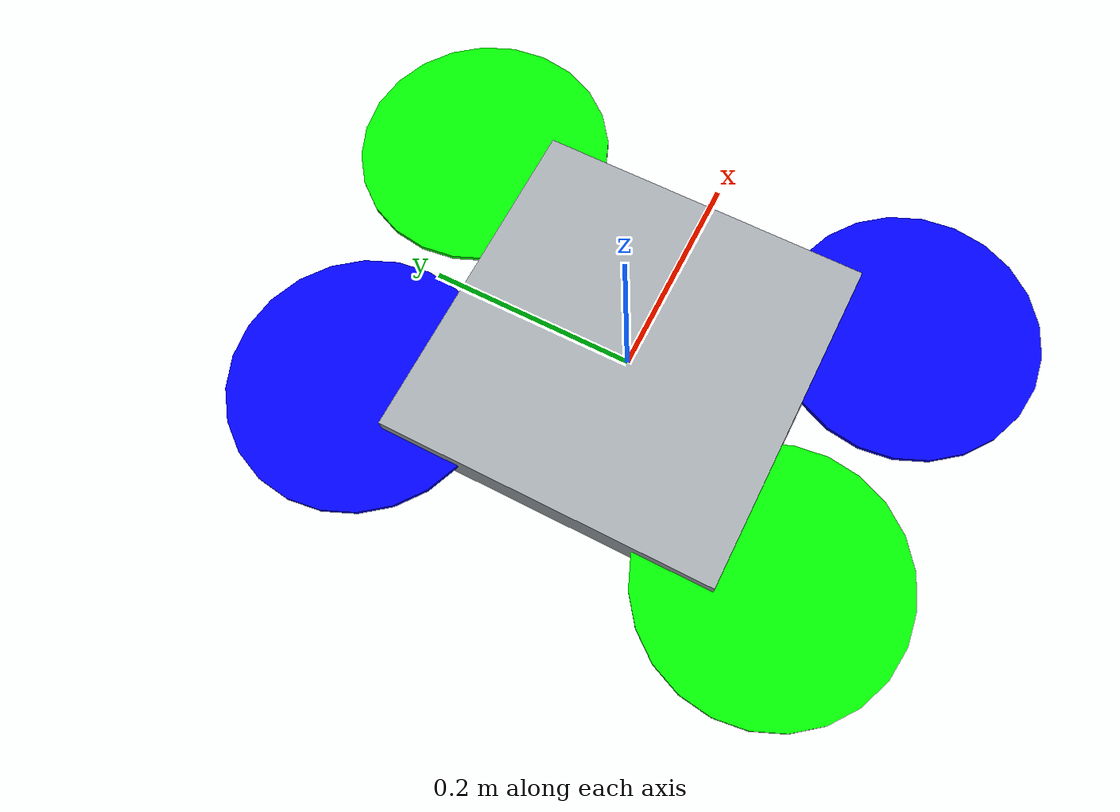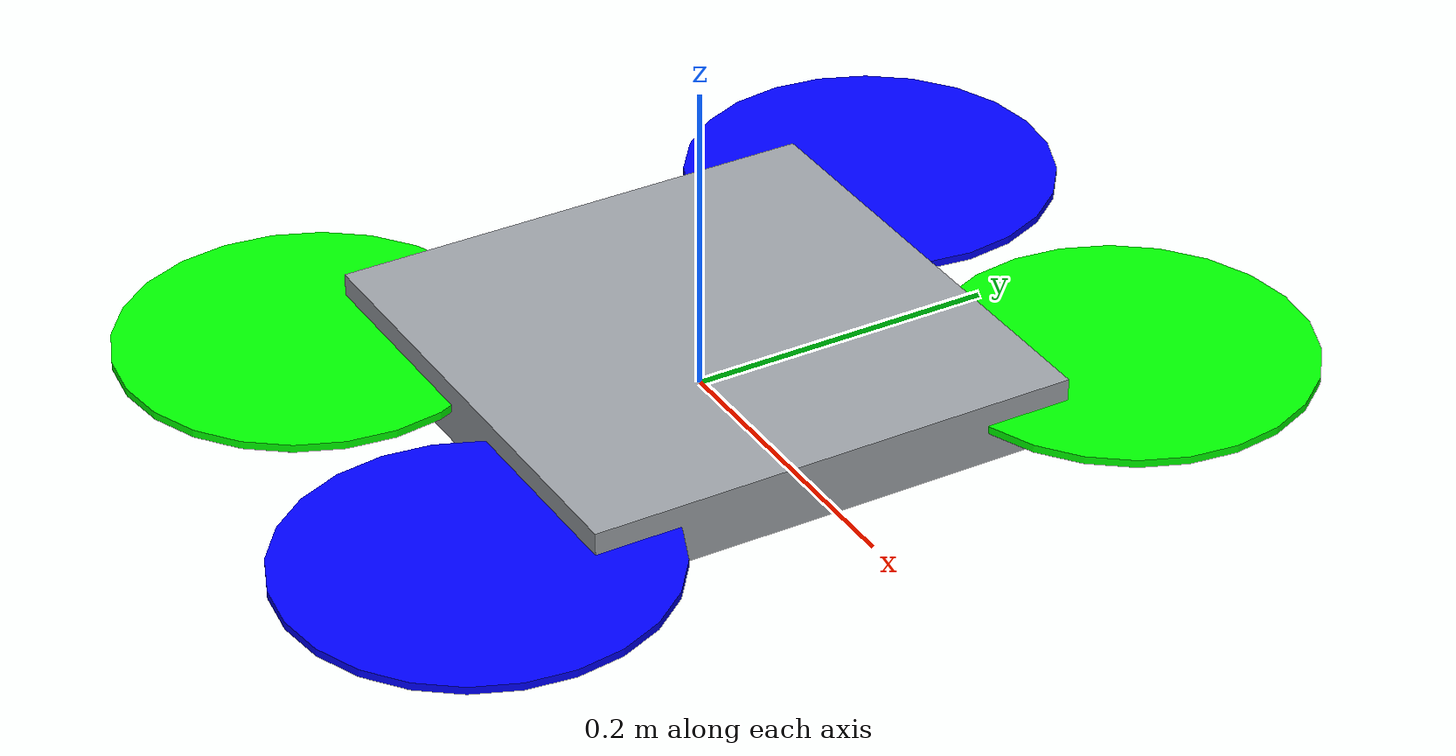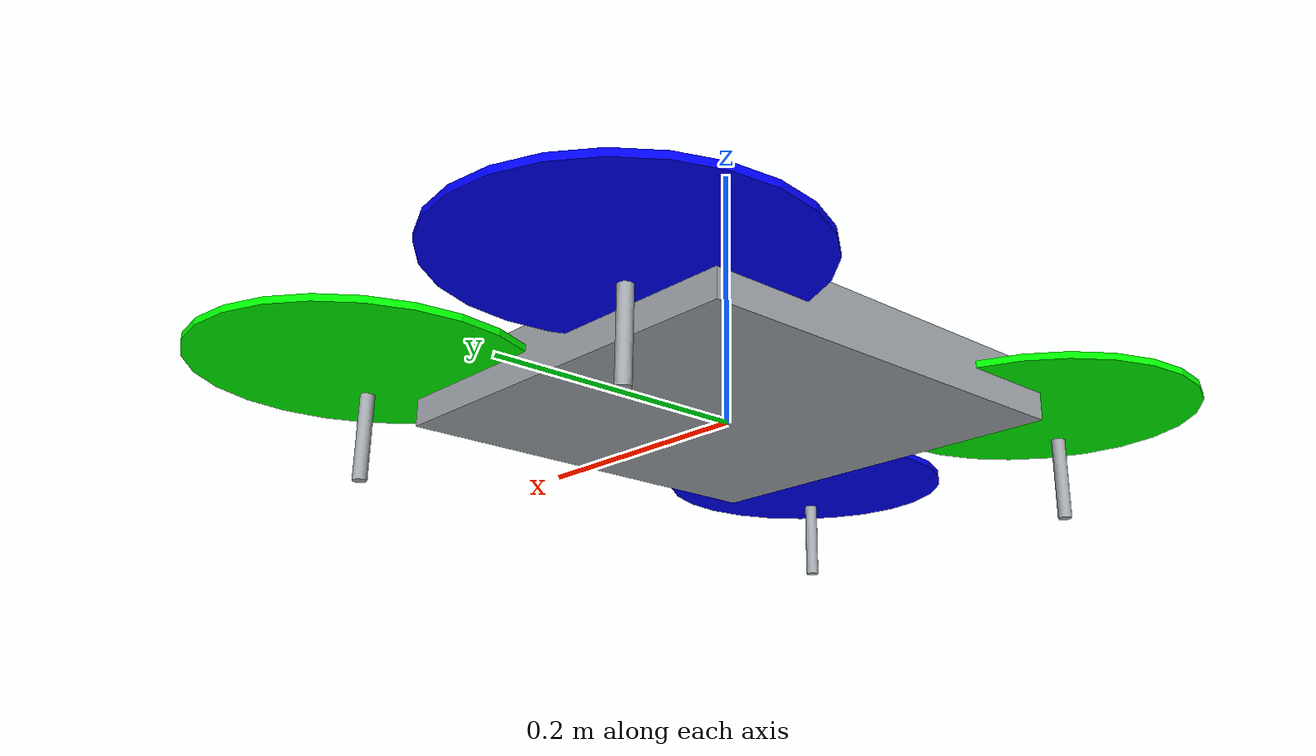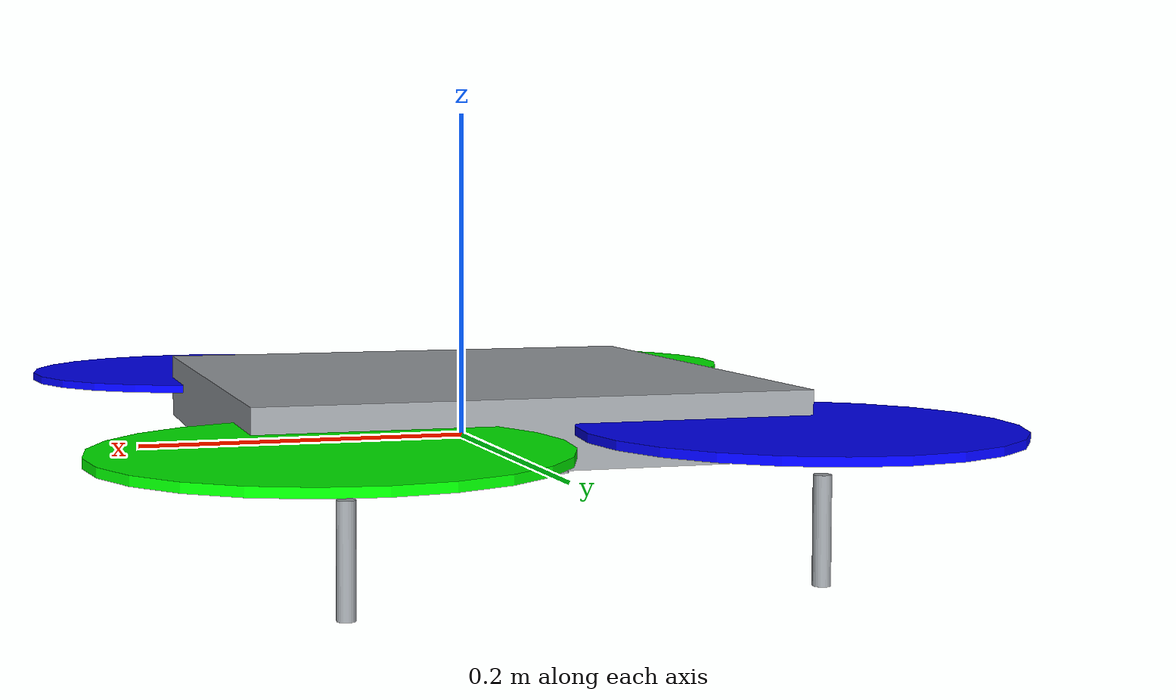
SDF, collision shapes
<?xml version='1.0'?>
<sdf version="1.9">
  <model name="ensamb_with_gimbal">
    <include>
      <uri>model://ensamb_with_standoffs</uri>
    </include>

    <!-- plugins -->
    <plugin filename="gz-sim-joint-state-publisher-system"
      name="gz::sim::systems::JointStatePublisher">
    </plugin>
    <plugin filename="gz-sim-lift-drag-system"
        name="gz::sim::systems::LiftDrag">
      <a0>0.3</a0>
      <alpha_stall>1.4</alpha_stall>
      <cla>4.2500</cla>
      <cda>0.10</cda>
      <cma>0.0</cma>
      <cla_stall>-0.025</cla_stall>
      <cda_stall>0.0</cda_stall>
      <cma_stall>0.0</cma_stall>
      <area>0.0018</area>
      <air_density>1.2041</air_density>
      <cp>0.084 0 0</cp>
      <forward>0 1 0</forward>
      <upward>0 0 1</upward>
      <link_name>ensamb_with_standoffs::rotor_0</link_name>
    </plugin>
    <plugin filename="gz-sim-lift-drag-system"
        name="gz::sim::systems::LiftDrag">
      <a0>0.3</a0>
      <alpha_stall>1.4</alpha_stall>
      <cla>4.2500</cla>
      <cda>0.10</cda>
      <cma>0.0</cma>
      <cla_stall>-0.025</cla_stall>
      <cda_stall>0.0</cda_stall>
      <cma_stall>0.0</cma_stall>
      <area>0.0018</area>
      <air_density>1.2041</air_density>
      <cp>-0.084 0 0</cp>
      <forward>0 -1 0</forward>
      <upward>0 0 1</upward>
      <link_name>ensamb_with_standoffs::rotor_0</link_name>
    </plugin>

    <plugin filename="gz-sim-lift-drag-system"
        name="gz::sim::systems::LiftDrag">
      <a0>0.3</a0>
      <alpha_stall>1.4</alpha_stall>
      <cla>4.2500</cla>
      <cda>0.10</cda>
      <cma>0.0</cma>
      <cla_stall>-0.025</cla_stall>
      <cda_stall>0.0</cda_stall>
      <cma_stall>0.0</cma_stall>
      <area>0.0018</area>
      <air_density>1.2041</air_density>
      <cp>0.084 0 0</cp>
      <forward>0 1 0</forward>
      <upward>0 0 1</upward>
      <link_name>ensamb_with_standoffs::rotor_1</link_name>
    </plugin>
    <plugin filename="gz-sim-lift-drag-system"
        name="gz::sim::systems::LiftDrag">
      <a0>0.3</a0>
      <alpha_stall>1.4</alpha_stall>
      <cla>4.2500</cla>
      <cda>0.10</cda>
      <cma>0.0</cma>
      <cla_stall>-0.025</cla_stall>
      <cda_stall>0.0</cda_stall>
      <cma_stall>0.0</cma_stall>
      <area>0.0018</area>
      <air_density>1.2041</air_density>
      <cp>-0.084 0 0</cp>
      <forward>0 -1 0</forward>
      <upward>0 0 1</upward>
      <link_name>ensamb_with_standoffs::rotor_1</link_name>
    </plugin>

    <plugin filename="gz-sim-lift-drag-system"
        name="gz::sim::systems::LiftDrag">
      <a0>0.3</a0>
      <alpha_stall>1.4</alpha_stall>
      <cla>4.2500</cla>
      <cda>0.10</cda>
      <cma>0.0</cma>
      <cla_stall>-0.025</cla_stall>
      <cda_stall>0.0</cda_stall>
      <cma_stall>0.0</cma_stall>
      <area>0.0018</area>
      <air_density>1.2041</air_density>
      <cp>0.084 0 0</cp>
      <forward>0 -1 0</forward>
      <upward>0 0 1</upward>
      <link_name>ensamb_with_standoffs::rotor_2</link_name>
    </plugin>
    <plugin filename="gz-sim-lift-drag-system"
        name="gz::sim::systems::LiftDrag">
      <a0>0.3</a0>
      <alpha_stall>1.4</alpha_stall>
      <cla>4.2500</cla>
      <cda>0.10</cda>
      <cma>0.0</cma>
      <cla_stall>-0.025</cla_stall>
      <cda_stall>0.0</cda_stall>
      <cma_stall>0.0</cma_stall>
      <area>0.0018</area>
      <air_density>1.2041</air_density>
      <cp>-0.084 0 0</cp>
      <forward>0 1 0</forward>
      <upward>0 0 1</upward>
      <link_name>ensamb_with_standoffs::rotor_2</link_name>
    </plugin>

    <plugin filename="gz-sim-lift-drag-system"
        name="gz::sim::systems::LiftDrag">
      <a0>0.3</a0>
      <alpha_stall>1.4</alpha_stall>
      <cla>4.2500</cla>
      <cda>0.10</cda>
      <cma>0.0</cma>
      <cla_stall>-0.025</cla_stall>
      <cda_stall>0.0</cda_stall>
      <cma_stall>0.0</cma_stall>
      <area>0.0018</area>
      <air_density>1.2041</air_density>
      <cp>0.084 0 0</cp>
      <forward>0 -1 0</forward>
      <upward>0 0 1</upward>
      <link_name>ensamb_with_standoffs::rotor_3</link_name>
    </plugin>
    <plugin filename="gz-sim-lift-drag-system"
        name="gz::sim::systems::LiftDrag">
      <a0>0.3</a0>
      <alpha_stall>1.4</alpha_stall>
      <cla>4.2500</cla>
      <cda>0.10</cda>
      <cma>0.0</cma>
      <cla_stall>-0.025</cla_stall>
      <cda_stall>0.0</cda_stall>
      <cma_stall>0.0</cma_stall>
      <area>0.0018</area>
      <air_density>1.2041</air_density>
      <cp>-0.084 0 0</cp>
      <forward>0 1 0</forward>
      <upward>0 0 1</upward>
      <link_name>ensamb_with_standoffs::rotor_3</link_name>
    </plugin>

    <plugin filename="gz-sim-apply-joint-force-system"
      name="gz::sim::systems::ApplyJointForce">
      <joint_name>ensamb_with_standoffs::rotor_0_joint</joint_name>
    </plugin>
    <plugin filename="gz-sim-apply-joint-force-system"
      name="gz::sim::systems::ApplyJointForce">
      <joint_name>ensamb_with_standoffs::rotor_1_joint</joint_name>
    </plugin>
    <plugin filename="gz-sim-apply-joint-force-system"
      name="gz::sim::systems::ApplyJointForce">
      <joint_name>ensamb_with_standoffs::rotor_2_joint</joint_name>
    </plugin>
    <plugin filename="gz-sim-apply-joint-force-system"
      name="gz::sim::systems::ApplyJointForce">
      <joint_name>ensamb_with_standoffs::rotor_3_joint</joint_name>
    </plugin>

    <plugin name="ArduPilotPlugin"
      filename="ArduPilotPlugin">
      <!-- Port settings -->
      <fdm_addr>127.0.0.1</fdm_addr>
      <fdm_port_in>9002</fdm_port_in>
      <connectionTimeoutMaxCount>5</connectionTimeoutMaxCount>
      <lock_step>1</lock_step>
      <no_time_sync>1</no_time_sync>

      <!-- Frame conventions
        Require by ArduPilot: change model and gazebo from XYZ to XY-Z coordinates
      -->
      <modelXYZToAirplaneXForwardZDown degrees="true">0 0 0 180 0 0</modelXYZToAirplaneXForwardZDown>
      <gazeboXYZToNED degrees="true">0 0 0 180 0 90</gazeboXYZToNED>

      <!-- Sensors -->
      <imuName>ensamb_with_standoffs::imu_link::imu_sensor</imuName>

      <control channel="0">
        <jointName>ensamb_with_standoffs::rotor_0_joint</jointName>
        <useForce>1</useForce>
        <multiplier>1069</multiplier>
        <offset>0</offset>
        <servo_min>1100</servo_min>
        <servo_max>1900</servo_max>
        <type>VELOCITY</type>
        <p_gain>0.20</p_gain>
        <i_gain>0</i_gain>
        <d_gain>0</d_gain>
        <i_max>0</i_max>
        <i_min>0</i_min>
        <cmd_max>2.5</cmd_max>
        <cmd_min>-2.5</cmd_min>
        <controlVelocitySlowdownSim>1</controlVelocitySlowdownSim>
      </control>

      <control channel="1">
        <jointName>ensamb_with_standoffs::rotor_1_joint</jointName>
        <useForce>1</useForce>
        <multiplier>1069</multiplier>
        <offset>0</offset>
        <servo_min>1100</servo_min>
        <servo_max>1900</servo_max>
        <type>VELOCITY</type>
        <p_gain>0.20</p_gain>
        <i_gain>0</i_gain>
        <d_gain>0</d_gain>
        <i_max>0</i_max>
        <i_min>0</i_min>
        <cmd_max>2.5</cmd_max>
        <cmd_min>-2.5</cmd_min>
        <controlVelocitySlowdownSim>1</controlVelocitySlowdownSim>
      </control>

      <control channel="2">
        <jointName>ensamb_with_standoffs::rotor_2_joint</jointName>
        <useForce>1</useForce>
        <multiplier>-1069</multiplier>
        <offset>0</offset>
        <servo_min>1100</servo_min>
        <servo_max>1900</servo_max>
        <type>VELOCITY</type>
        <p_gain>0.20</p_gain>
        <i_gain>0</i_gain>
        <d_gain>0</d_gain>
        <i_max>0</i_max>
        <i_min>0</i_min>
        <cmd_max>2.5</cmd_max>
        <cmd_min>-2.5</cmd_min>
        <controlVelocitySlowdownSim>1</controlVelocitySlowdownSim>
      </control>

      <control channel="3">
        <jointName>ensamb_with_standoffs::rotor_3_joint</jointName>
        <useForce>1</useForce>
        <multiplier>-1069</multiplier>
        <offset>0</offset>
        <servo_min>1100</servo_min>
        <servo_max>1900</servo_max>
        <type>VELOCITY</type>
        <p_gain>0.20</p_gain>
        <i_gain>0</i_gain>
        <d_gain>0</d_gain>
        <i_max>0</i_max>
        <i_min>0</i_min>
        <cmd_max>2.5</cmd_max>
        <cmd_min>-2.5</cmd_min>
        <controlVelocitySlowdownSim>1</controlVelocitySlowdownSim>
      </control>

    </plugin>

  </model>
</sdf>

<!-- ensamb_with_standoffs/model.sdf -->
<sdf version='1.9'>
  <model name='ensamb_with_standoffs'>
    <pose>0 0 0 0 0 0</pose>
    <link name='base_link'>
      <velocity_decay>
        <linear>0.0</linear>
        <angular>0.0</angular>
      </velocity_decay>
      <inertial>
        <pose>0 0 0 0 0 0</pose>
        <mass>0.825</mass>
        <inertia>
          <ixx>0.008</ixx>
          <ixy>0</ixy>
          <ixz>0</ixz>
          <iyy>0.015</iyy>
          <iyz>0</iyz>
          <izz>0.017</izz>
        </inertia>
      </inertial>
      <collision name='base_collision'>
        <pose>0 0 0.02 0 0 0</pose>
        <geometry>
          <box>
            <size>0.32 0.32 0.04</size>
          </box>
        </geometry>
        <surface>
          <contact>
            <ode>
              <max_vel>100.0</max_vel>
              <min_depth>0.001</min_depth>
            </ode>
          </contact>
          <friction>
            <ode>
              <mu>100000.0</mu>
              <mu2>100000.0</mu2>
            </ode>
          </friction>
        </surface>
      </collision>
      <collision name='front_left_leg_collision'>
        <pose>0.123 0.22 -0.03 0 0 0</pose>
        <geometry>
          <cylinder>
            <radius>0.005</radius>
            <length>0.06</length>
          </cylinder>
        </geometry>
        <surface>
          <contact>
            <ode>
              <max_vel>100.0</max_vel>
              <min_depth>0.001</min_depth>
            </ode>
          </contact>
          <friction>
            <ode>
              <mu>100000.0</mu>
              <mu2>100000.0</mu2>
            </ode>
          </friction>
        </surface>
      </collision>
      <collision name='front_right_leg_collision'>
        <pose>0.123 -0.22 -0.03 0 0 0</pose>
        <geometry>
          <cylinder>
            <radius>0.005</radius>
            <length>0.06</length>
          </cylinder>
        </geometry>
        <surface>
          <contact>
            <ode>
              <max_vel>100.0</max_vel>
              <min_depth>0.001</min_depth>
            </ode>
          </contact>
          <friction>
            <ode>
              <mu>100000.0</mu>
              <mu2>100000.0</mu2>
            </ode>
          </friction>
        </surface>
      </collision>
      <collision name='rear_left_leg_collision'>
        <pose>-0.140 0.21 -0.03 0 0 0</pose>
        <geometry>
          <cylinder>
            <radius>0.005</radius>
            <length>0.06</length>
          </cylinder>
        </geometry>
        <surface>
          <contact>
            <ode>
              <max_vel>100.0</max_vel>
              <min_depth>0.001</min_depth>
            </ode>
          </contact>
          <friction>
            <ode>
              <mu>100000.0</mu>
              <mu2>100000.0</mu2>
            </ode>
          </friction>
        </surface>
      </collision>
      <collision name='rear_right_leg_collision'>
        <pose>-0.140 -0.21 -0.03 0 0 0</pose>
        <geometry>
          <cylinder>
            <radius>0.005</radius>
            <length>0.06</length>
          </cylinder>
        </geometry>
        <surface>
          <contact>
            <ode>
              <max_vel>100.0</max_vel>
              <min_depth>0.001</min_depth>
            </ode>
          </contact>
          <friction>
            <ode>
              <mu>100000.0</mu>
              <mu2>100000.0</mu2>
            </ode>
          </friction>
        </surface>
      </collision>

      <visual name='base_visual'>
        <pose>-0.192857 0.147636 -0.103423 0 0 0</pose>
        <geometry>
          <mesh>
            <uri>model://ensamb_with_standoffs/meshes/ensambFinal.STL</uri>
            <scale>0.001 0.001 0.001</scale>
          </mesh>
        </geometry>
        <material>
          <ambient>0.62 0.64 0.66 1</ambient>
          <diffuse>0.62 0.64 0.66 1</diffuse>
          <specular>0.15 0.15 0.15 1</specular>
        </material>
      </visual>
      <visual name='front_left_leg_visual'>
        <transparency>1</transparency>
        <pose>0.123 0.22 -0.03 0 0 0</pose>
        <geometry>
          <cylinder>
            <radius>0.005</radius>
            <length>0.06</length>
          </cylinder>
        </geometry>
        <material>
          <ambient>0.05 0.05 0.05</ambient>
          <diffuse>0.05 0.05 0.05</diffuse>
          <specular>0.01 0.01 0.01 1.0</specular>
          <pbr>
            <metal>
              <metalness>0.5</metalness>
              <roughness>0.5</roughness>
            </metal>
          </pbr>
        </material>
      </visual>
      <visual name='front_right_leg_visual'>
        <transparency>1</transparency>
        <pose>0.123 -0.22 -0.03 0 0 0</pose>
        <geometry>
          <cylinder>
            <radius>0.005</radius>
            <length>0.06</length>
          </cylinder>
        </geometry>
        <material>
          <ambient>0.05 0.05 0.05</ambient>
          <diffuse>0.05 0.05 0.05</diffuse>
          <specular>0.01 0.01 0.01 1.0</specular>
          <pbr>
            <metal>
              <metalness>0.5</metalness>
              <roughness>0.5</roughness>
            </metal>
          </pbr>
        </material>
      </visual>
      <visual name='rear_left_leg_visual'>
        <transparency>1</transparency>
        <pose>-0.140 0.21 -0.03 0 0 0</pose>
        <geometry>
          <cylinder>
            <radius>0.005</radius>
            <length>0.06</length>
          </cylinder>
        </geometry>
        <material>
          <ambient>0.05 0.05 0.05</ambient>
          <diffuse>0.05 0.05 0.05</diffuse>
          <specular>0.01 0.01 0.01 1.0</specular>
          <pbr>
            <metal>
              <metalness>0.5</metalness>
              <roughness>0.5</roughness>
            </metal>
          </pbr>
        </material>
      </visual>
      <visual name='rear_right_leg_visual'>
        <transparency>1</transparency>
        <pose>-0.140 -0.21 -0.03 0 0 0</pose>
        <geometry>
          <cylinder>
            <radius>0.005</radius>
            <length>0.06</length>
          </cylinder>
        </geometry>
        <material>
          <ambient>0.05 0.05 0.05</ambient>
          <diffuse>0.05 0.05 0.05</diffuse>
          <specular>0.01 0.01 0.01 1.0</specular>
          <pbr>
            <metal>
              <metalness>0.5</metalness>
              <roughness>0.5</roughness>
            </metal>
          </pbr>
        </material>
      </visual>
    </link>
    <link name='imu_link'>
      <inertial>
        <pose>0 0 0 0 0 0</pose>
        <mass>0.001</mass>
        <inertia>
          <ixx>0.00001</ixx>
          <ixy>0</ixy>
          <ixz>0</ixz>
          <iyy>0.00002</iyy>
          <iyz>0</iyz>
          <izz>0.00002</izz>
        </inertia>
      </inertial>
      <sensor name="imu_sensor" type="imu">
        <gz_frame_id>imu_link</gz_frame_id>
        <pose degrees="true">0 0 0 180 0 0</pose>
        <always_on>1</always_on>
        <update_rate>1000.0</update_rate>
      </sensor>
    </link>
    <joint name='imu_joint' type='revolute'>
      <child>imu_link</child>
      <parent>base_link</parent>
      <axis>
        <xyz>0 0 1</xyz>
        <limit>
          <lower>0</lower>
          <upper>0</upper>
          <effort>0</effort>
          <velocity>0</velocity>
        </limit>
        <dynamics>
          <damping>1.0</damping>
        </dynamics>
      </axis>
    </joint>
    <link name='down_camera_link'>
      <pose>0 0 -0.021 0 0 0</pose>
      <inertial>
        <mass>0.001</mass>
        <inertia>
          <ixx>1e-06</ixx>
          <ixy>0</ixy>
          <ixz>0</ixz>
          <iyy>1e-06</iyy>
          <iyz>0</iyz>
          <izz>1e-06</izz>
        </inertia>
      </inertial>
      <sensor name='down_camera' type='camera'>
        <gz_frame_id>down_camera_link</gz_frame_id>
        <pose>0 0 0 0 1.57079632679 0</pose>
        <camera>
          <horizontal_fov>2.7507</horizontal_fov>
          <image>
            <width>640</width>
            <height>480</height>
          </image>
          <clip>
            <near>0.02</near>
            <far>15000</far>
          </clip>
        </camera>
        <always_on>1</always_on>
        <update_rate>10</update_rate>
        <visualize>1</visualize>
        <plugin filename="CameraZoomPlugin"
            name="CameraZoomPlugin">
          <max_zoom>125.0</max_zoom>
          <slew_rate>0.42514285714</slew_rate>
        </plugin>
        <plugin name="GstCameraPlugin"
            filename="GstCameraPlugin">
          <udp_host>127.0.0.1</udp_host>
          <udp_port>5600</udp_port>
          <use_basic_pipeline>true</use_basic_pipeline>
          <use_cuda>false</use_cuda>
        </plugin>
      </sensor>
    </link>
    <joint name='down_camera_joint' type='fixed'>
      <child>down_camera_link</child>
      <parent>base_link</parent>
    </joint>
    <link name='rotor_0'>
      <pose>0.13 -0.22 0.023 0 0 0</pose>
      <inertial>
        <pose>0 0 0 0 0 0</pose>
        <mass>0.089</mass>
        <inertia>
          <ixx>9.75e-06</ixx>
          <ixy>0</ixy>
          <ixz>0</ixz>
          <iyy>0.000166704</iyy>
          <iyz>0</iyz>
          <izz>0.000167604</izz>
        </inertia>
      </inertial>
      <collision name='collision'>
        <pose>0 0 0 0 0 0</pose>
        <geometry>
          <cylinder>
            <length>0.005</length>
            <radius>0.12</radius>
          </cylinder>
        </geometry>
      </collision>
      <visual name='visual'>
        <pose>0 0 0 0 0 0</pose>
        <geometry>
          <mesh>
            <scale>1 1 1</scale>
            <uri>model://ensamb_with_standoffs/meshes/iris_prop_ccw.dae</uri>
          </mesh>
        </geometry>
        <material>
          <ambient>0 0 1</ambient>
          <diffuse>0 0 1</diffuse>
          <specular>1 1 1 1</specular>
          <pbr>
            <metal>
              <metalness>0.5</metalness>
              <roughness>0.5</roughness>
            </metal>
          </pbr>
        </material>
      </visual>
    </link>
    <joint name='rotor_0_joint' type='revolute'>
      <child>rotor_0</child>
      <parent>base_link</parent>
      <axis>
        <xyz>0 0 1</xyz>
        <limit>
          <lower>-1e+16</lower>
          <upper>1e+16</upper>
        </limit>
        <dynamics>
          <damping>0.004</damping>
        </dynamics>
      </axis>
    </joint>
    <link name='rotor_1'>
      <pose>-0.13 0.2 0.023 0 0 0</pose>
      <inertial>
        <pose>0 0 0 0 0 0</pose>
        <mass>0.089</mass>
        <inertia>
          <ixx>9.75e-06</ixx>
          <ixy>0</ixy>
          <ixz>0</ixz>
          <iyy>0.000166704</iyy>
          <iyz>0</iyz>
          <izz>0.000167604</izz>
        </inertia>
      </inertial>
      <collision name='collision'>
        <pose>0 0 0 0 0 0</pose>
        <geometry>
          <cylinder>
            <length>0.005</length>
            <radius>0.12</radius>
          </cylinder>
        </geometry>
      </collision>
      <visual name='visual'>
        <pose>0 0 0 0 0 0</pose>
        <geometry>
          <mesh>
            <scale>1 1 1</scale>
            <uri>model://ensamb_with_standoffs/meshes/iris_prop_ccw.dae</uri>
          </mesh>
        </geometry>
        <material>
          <ambient>0 0 1 1</ambient>
          <diffuse>0 0 1 1</diffuse>
          <specular>1 1 1 1</specular>
          <pbr>
            <metal>
              <metalness>0.5</metalness>
              <roughness>0.5</roughness>
            </metal>
          </pbr>
        </material>
      </visual>
    </link>
    <joint name='rotor_1_joint' type='revolute'>
      <child>rotor_1</child>
      <parent>base_link</parent>
      <axis>
        <xyz>0 0 1</xyz>
        <limit>
          <lower>-1e+16</lower>
          <upper>1e+16</upper>
        </limit>
        <dynamics>
          <damping>0.004</damping>
        </dynamics>
      </axis>
    </joint>
    <link name='rotor_2'>
      <pose>0.13 0.22 0.023 0 0 0</pose>
      <inertial>
        <pose>0 0 0 0 0 0</pose>
        <mass>0.089</mass>
        <inertia>
          <ixx>9.75e-06</ixx>
          <ixy>0</ixy>
          <ixz>0</ixz>
          <iyy>0.000166704</iyy>
          <iyz>0</iyz>
          <izz>0.000167604</izz>
        </inertia>
      </inertial>
      <collision name='collision'>
        <pose>0 0 0 0 0 0</pose>
        <geometry>
          <cylinder>
            <length>0.005</length>
            <radius>0.12</radius>
          </cylinder>
        </geometry>
      </collision>
      <visual name='visual'>
        <pose>0 0 0 0 0 0</pose>
        <geometry>
          <mesh>
            <scale>1 1 1</scale>
            <uri>model://ensamb_with_standoffs/meshes/iris_prop_cw.dae</uri>
          </mesh>
        </geometry>
        <material>
          <ambient>0 1 0</ambient>
          <diffuse>0 1 0</diffuse>
          <specular>1 1 1 1</specular>
          <pbr>
            <metal>
              <metalness>0.5</metalness>
              <roughness>0.5</roughness>
            </metal>
          </pbr>
        </material>
      </visual>
    </link>
    <joint name='rotor_2_joint' type='revolute'>
      <child>rotor_2</child>
      <parent>base_link</parent>
      <axis>
        <xyz>0 0 1</xyz>
        <limit>
          <lower>-1e+16</lower>
          <upper>1e+16</upper>
        </limit>
        <dynamics>
          <damping>0.004</damping>
        </dynamics>
      </axis>
    </joint>
    <link name='rotor_3'>
      <pose>-0.13 -0.2 0.023 0 0 0</pose>
      <inertial>
        <pose>0 0 0 0 0 0</pose>
        <mass>0.089</mass>
        <inertia>
          <ixx>9.75e-06</ixx>
          <ixy>0</ixy>
          <ixz>0</ixz>
          <iyy>0.000166704</iyy>
          <iyz>0</iyz>
          <izz>0.000167604</izz>
        </inertia>
      </inertial>
      <collision name='collision'>
        <pose>0 0 0 0 0 0</pose>
        <geometry>
          <cylinder>
            <length>0.005</length>
            <radius>0.12</radius>
          </cylinder>
        </geometry>
      </collision>
      <visual name='visual'>
        <pose>0 0 0 0 0 0</pose>
        <geometry>
          <mesh>
            <scale>1 1 1</scale>
            <uri>model://ensamb_with_standoffs/meshes/iris_prop_cw.dae</uri>
          </mesh>
        </geometry>
        <material>
          <ambient>0 1 0</ambient>
          <diffuse>0 1 0</diffuse>
          <specular>1 1 1 1</specular>
          <pbr>
            <metal>
              <metalness>0.5</metalness>
              <roughness>0.5</roughness>
            </metal>
          </pbr>
        </material>
      </visual>
    </link>
    <joint name='rotor_3_joint' type='revolute'>
      <child>rotor_3</child>
      <parent>base_link</parent>
      <axis>
        <xyz>0 0 1</xyz>
        <limit>
          <lower>-1e+16</lower>
          <upper>1e+16</upper>
        </limit>
        <dynamics>
          <damping>0.004</damping>
        </dynamics>
      </axis>
    </joint>
  </model>
</sdf>
